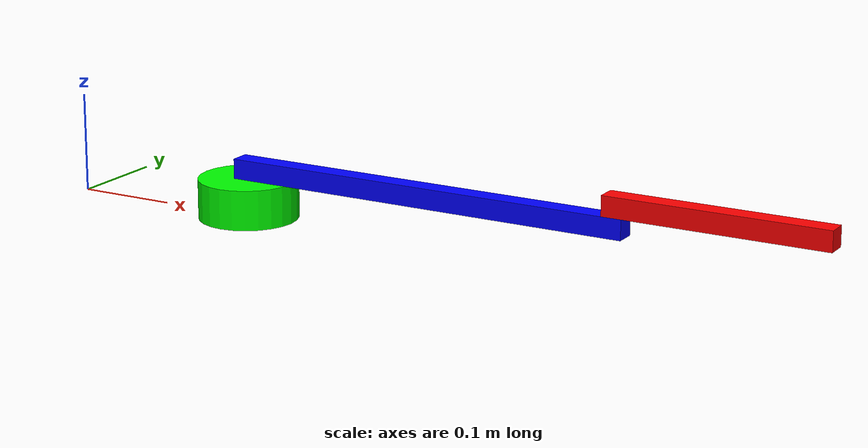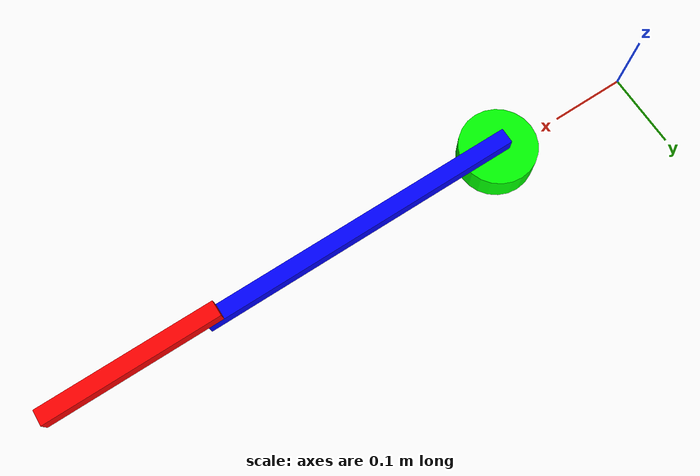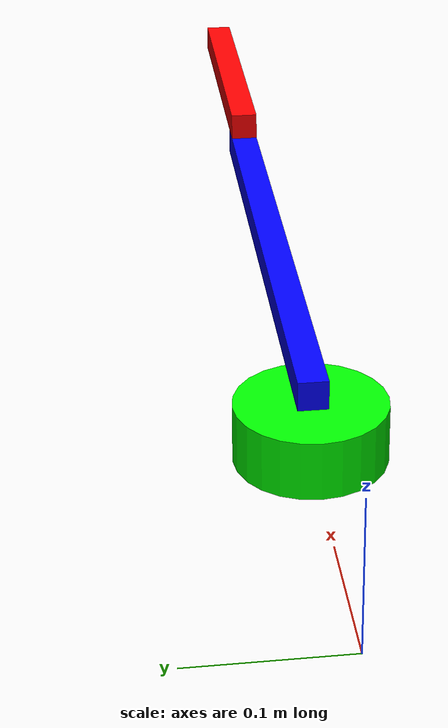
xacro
<?xml version="1.0"?>

<robot name="double_pendulum" xmlns:xacro="http://www.ros.org/wiki/xacro">
    <xacro:include filename="double_pendulum_params.xacro"/>

  <!-- World link -->
  <link name="world"/>

  <!-- Link base (fijo) -->
  <link name="base_link">
      <visual>
          <origin xyz="0 0 0.02"/>
          <geometry>
              <cylinder radius="0.05" length="0.04"/>
          </geometry>
          <material name="green">
              <color rgba="0 1 0 1"/>
          </material>
      </visual>
      <collision>
          <origin xyz="0 0 0.02"/>
          <geometry>
              <cylinder radius="0.05" length="0.04"/>
          </geometry>
      </collision>
  </link>

  <!-- Primer eslabón -->
  <link name="link1">
      <visual>
          <origin xyz="${L1/2} 0 0"/>
          <geometry>
              <box size="${L1+0.02} ${link_width} ${link_height}"/>
          </geometry>
          <material name="blue">
              <color rgba="0 0 1 1"/>
          </material>
      </visual>
      <collision>
          <origin xyz="${L1/2} 0 0"/>
          <geometry>
              <box size="${L1+0.02} ${link_width} ${link_height}"/>
          </geometry>
      </collision>
  </link>

  <!-- Segundo eslabón -->
  <link name="link2">
      <visual>
          <origin xyz="0.1 0 0"/>
          <geometry>
              <box size="0.22 0.02 0.02"/>
          </geometry>
          <material name="red">
              <color rgba="1 0 0 1"/>
          </material>
      </visual>
      <collision>
          <origin xyz="0.1 0 0"/>
          <geometry>
              <box size="0.2 0.02 0.02"/>
          </geometry>
      </collision>
  </link>

  <!--******************* DEFINICIONES DE JUNTAS  *******************-->
  <!-- Junta fija entre world y base_link -->
  <joint name="fixed" type="fixed">
      <parent link="world"/>
      <child link="base_link"/>
      <origin xyz="0.2 0 0" rpy="0 0 0"/>
  </joint>

  <!-- Junta entre base y link1 -->
  <joint name="joint1" type="revolute">
      <parent link="base_link"/>
      <child link="link1"/>
      <origin xyz="0 0 0.05"/>
      <axis xyz="0 0 1"/>
      <limit effort="1000" lower="-3.14" upper="3.14" velocity="5"/>
  </joint>

  <!-- Junta entre link1 y link2 -->
  <joint name="joint2" type="revolute">
      <parent link="link1"/>
      <child link="link2"/>
      <origin xyz="${L1} 0 ${link_height}"/>
      <axis xyz="0 0 1"/>
      <limit effort="1000" lower="-3.14" upper="3.14" velocity="5"/>
  </joint>
</robot>

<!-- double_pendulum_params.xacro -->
<robot xmlns:xacro="http://www.ros.org/wiki/xacro">

    <!-- Longitudes -->
    <xacro:property name="L1" value="0.4"/>
    <xacro:property name="L2" value="0.2"/>

    <!-- Espesores -->
    <xacro:property name="link_width" value="0.02"/>
    <xacro:property name="link_height" value="0.02"/>

</robot>
